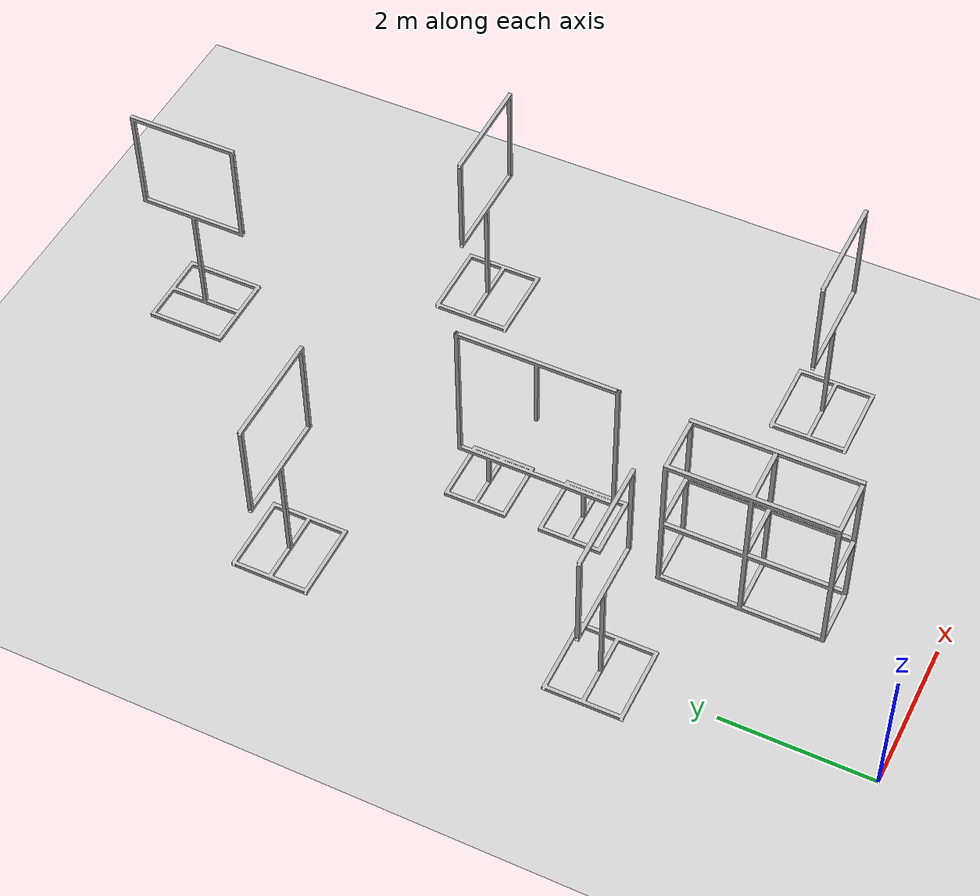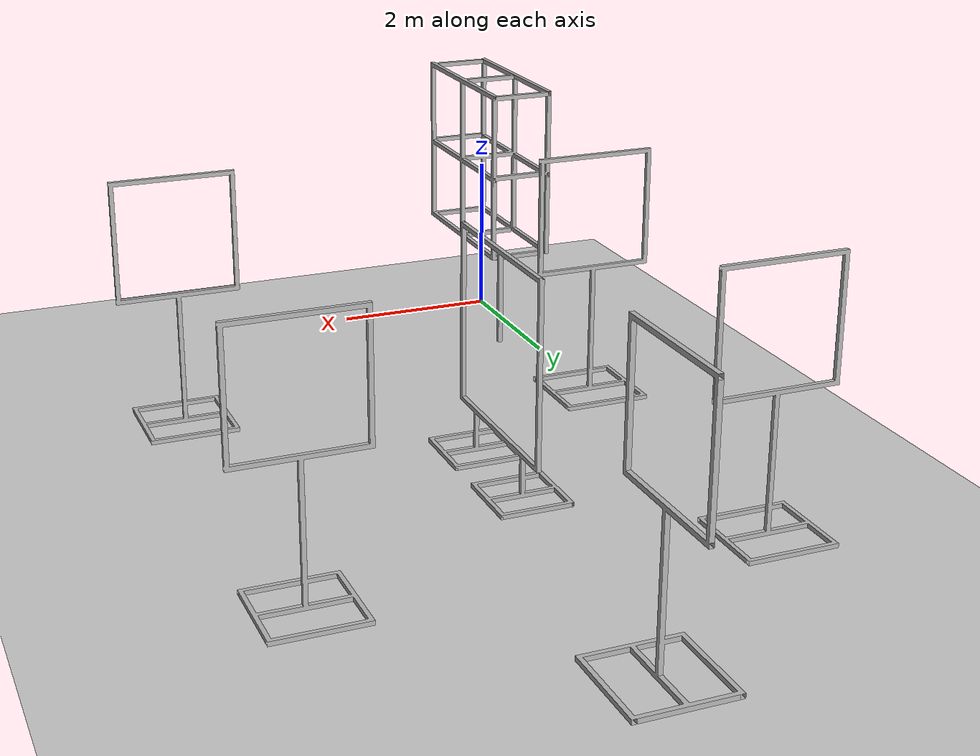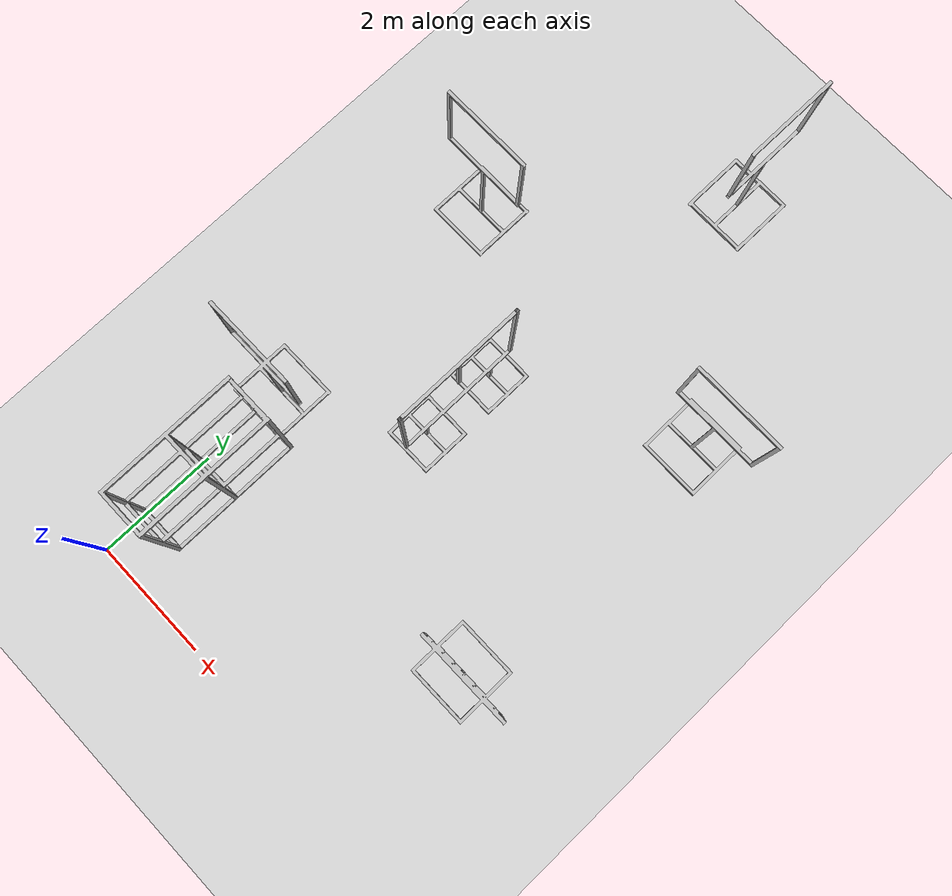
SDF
<sdf version="1.6">
 <world name="default">
  <light name="sun" type="directional">
   <pose>0 0 10 0 -0 0</pose>
   <diffuse>0.8 0.8 0.8 1</diffuse>
   <specular>0.1 0.1 0.1 1</specular>
   <attenuation>
    <range>1000</range>
    <constant>0.9</constant>
    <linear>0.01</linear>
    <quadratic>0.001</quadratic>
   </attenuation>
   <direction>-0.5 0.5 -1</direction>
  </light>
  <model name="ground_plane">
   <static>1</static>
   <link name="link">
    <collision name="collision">
     <geometry><plane><normal>0 0 1</normal><size>100 100</size></plane></geometry>
     <surface><friction><ode><mu>100</mu><mu2>50</mu2></ode></friction></surface>
    </collision>
    <visual name="visual">
     <cast_shadows>0</cast_shadows>
     <geometry><plane><normal>0 0 1</normal><size>100 100</size></plane></geometry>
     <material>
      <script><uri>file://media/materials/scripts/gazebo.material</uri><name>Gazebo/Grey</name></script>
     </material>
    </visual>
   </link>
  </model>
  <gravity>0 0 -9.8</gravity>
  <magnetic_field>6e-06 2.3e-05 -4.2e-05</magnetic_field>
  <atmosphere type="adiabatic"/>
  <physics name="default_physics" default="0" type="ode">
   <max_step_size>0.001</max_step_size>
   <real_time_factor>1</real_time_factor>
   <real_time_update_rate>1000</real_time_update_rate>
  </physics>
  <scene><ambient>0.4 0.4 0.4 1</ambient><background>0.7 0.7 0.7 1</background><shadows>1</shadows></scene>
  <spherical_coordinates>
   <surface_model>EARTH_WGS84</surface_model>
   <latitude_deg>51.9906361</latitude_deg>
   <longitude_deg>4.3767874</longitude_deg>
   <elevation>45.110</elevation>
   <heading_deg>180</heading_deg>
  </spherical_coordinates>
  <model name="gate 1">
   <static>1</static>
   <pose>0 3.5 0 0 -0 0</pose>
   <link name="dronerace gate 2018">
    <visual name="gate">
     <geometry>
      <mesh><uri>model://dronerace_gate_2018/normal_gate_2018.dae</uri><scale>1 1 1</scale></mesh>
     </geometry>
    </visual>
    <collision name="gate_collision">
     <geometry>
      <mesh><uri>model://dronerace_gate_2018/normal_gate_2018.dae</uri><scale>1 1 1</scale></mesh>
     </geometry>
    </collision>
   </link>
  </model>
  <model name="gate 2">
   <static>1</static>
   <pose>0 7.7 0 0 -0 0</pose>
   <link name="dronerace gate 2018">
    <visual name="gate">
     <geometry>
      <mesh><uri>model://dronerace_gate_2018/normal_gate_2018.dae</uri><scale>1 1 1</scale></mesh>
     </geometry>
    </visual>
    <collision name="gate_collision">
     <geometry>
      <mesh><uri>model://dronerace_gate_2018/normal_gate_2018.dae</uri><scale>1 1 1</scale></mesh>
     </geometry>
    </collision>
   </link>
  </model>
  <model name="gate 3">
   <static>1</static>
   <pose>2.75 10.45 0.5 0 0 1.57</pose>
   <link name="dronerace gate 2018">
    <visual name="gate">
     <geometry>
      <mesh><uri>model://dronerace_gate_2018/normal_gate_2018.dae</uri><scale>1 1 1</scale></mesh>
     </geometry>
    </visual>
    <collision name="gate_collision">
     <geometry>
      <mesh><uri>model://dronerace_gate_2018/normal_gate_2018.dae</uri><scale>1 1 1</scale></mesh>
     </geometry>
    </collision>
   </link>
  </model>
  <model name="gate 4">
   <static>1</static>
   <pose>4.9 7.4 0 0 -0 0</pose>
   <link name="dronerace gate 2018">
    <visual name="gate">
     <geometry>
      <mesh><uri>model://dronerace_gate_2018/normal_gate_2018.dae</uri><scale>1 1 1</scale></mesh>
     </geometry>
    </visual>
    <collision name="gate_collision">
     <geometry>
      <mesh><uri>model://dronerace_gate_2018/normal_gate_2018.dae</uri><scale>1 1 1</scale></mesh>
     </geometry>
    </collision>
   </link>
  </model>
  <model name="gate 5">
   <static>1</static>
   <pose>4.9 2.6 0 0 -0 0</pose>
   <link name="dronerace gate 2018">
    <visual name="gate">
     <geometry>
      <mesh><uri>model://dronerace_gate_2018/normal_gate_2018.dae</uri><scale>1 1 1</scale></mesh>
     </geometry>
    </visual>
    <collision name="gate_collision">
     <geometry>
      <mesh><uri>model://dronerace_gate_2018/normal_gate_2018.dae</uri><scale>1 1 1</scale></mesh>
     </geometry>
    </collision>
   </link>
  </model>
  <model name="gate 6">
   <static>1</static>
   <pose>1.1 2.0 1.7 0 -0 1.57</pose>
   <link name="dronerace gate 2018">
    <visual name="gate">
     <geometry>
      <mesh><uri>model://dronerace_junglegate_2018/jungle_gate_2018.dae</uri><scale>1 1 1</scale></mesh>
     </geometry>
    </visual>
    <collision name="gate_collision">
     <geometry>
      <mesh><uri>model://dronerace_junglegate_2018/jungle_gate_2018.dae</uri><scale>1 1 1</scale></mesh>
     </geometry>
    </collision>
   </link>
  </model>
  <model name="gate 7">
   <static>1</static>
   <pose>2.0 5.3 0 0 -0 1.57</pose>
   <link name="dronerace dynamic gate 2018">
    <visual name="gate">
     <geometry>
      <mesh><uri>model://dronerace_dynamicgate_2018/dynamic_gate_2018.dae</uri><scale>1 1 1</scale></mesh>
     </geometry>
    </visual>
    <collision name="gate_collision">
     <geometry>
      <mesh><uri>model://dronerace_dynamicgate_2018/dynamic_gate_2018.dae</uri><scale>1 1 1</scale></mesh>
     </geometry>
    </collision>
   </link>
  </model>
 </world>
</sdf>
